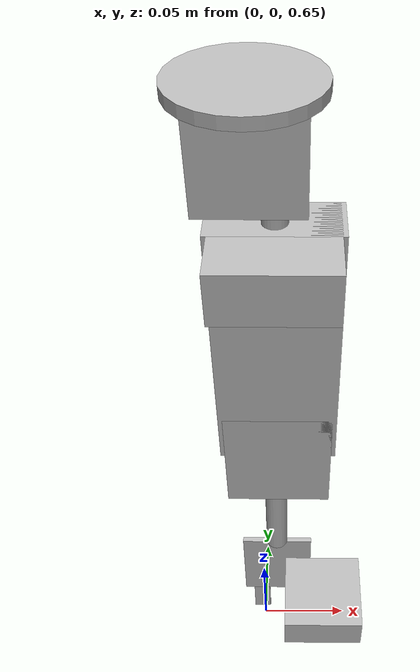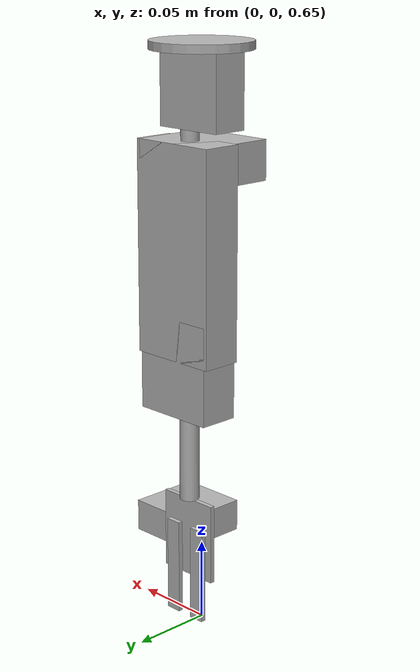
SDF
<sdf version="1.9">
 <world name="aerial_manipulator_world">
  <physics name="1ms" type="ignored">
   <max_step_size>0.001</max_step_size>
   <real_time_factor>1.0</real_time_factor>
  </physics>
  <plugin filename="gz-sim-physics-system" name="gz::sim::systems::Physics"/>
  <plugin filename="gz-sim-user-commands-system" name="gz::sim::systems::UserCommands"/>
  <plugin filename="gz-sim-scene-broadcaster-system" name="gz::sim::systems::SceneBroadcaster"/>
  <plugin filename="gz-sim-sensors-system" name="gz::sim::systems::Sensors">
   <render_engine>ogre2</render_engine>
  </plugin>
  <light type="directional" name="sun">
   <pose>0 0 10 0 0 0</pose>
   <diffuse>0.8 0.8 0.8 1</diffuse>
   <specular>0.2 0.2 0.2 1</specular>
   <attenuation>
    <range>1000</range>
    <constant>0.9</constant>
    <linear>0.01</linear>
    <quadratic>0.001</quadratic>
   </attenuation>
   <direction>-0.5 0.1 -0.9</direction>
  </light>
  <model name="ground_plane">
   <static>true</static>
   <link name="link">
    <collision name="collision"><geometry><plane><normal>0 0 1</normal></plane></geometry></collision>
    <visual name="visual">
     <geometry><plane><normal>0 0 1</normal><size>100 100</size></plane></geometry>
     <material>
      <ambient>0.8 0.8 0.8 1</ambient>
      <diffuse>0.8 0.8 0.8 1</diffuse>
      <specular>0.8 0.8 0.8 1</specular>
     </material>
    </visual>
   </link>
  </model>
  <include>
   <uri>file:///home/lahiru/newlocalrepo/rl-aerial-manipulator/Manipulator/src/manipulator_description/sdf</uri>
   <name>manipulator</name>
   <pose>0 0 1.0 0 0 0</pose>
  </include>
  <joint name="hexa_arm_fixed" type="fixed">
   <parent>hexacopter::base_link</parent>
   <child>manipulator::base_plate</child>
  </joint>
 </world>
</sdf>

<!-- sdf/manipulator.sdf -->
<sdf version='1.11'>
  <model name='manipulator'>
    <link name='base_plate'>
      <inertial>
        <pose>0.00070370370370370367 0 -0.017351851851851851 0 0 0</pose>
        <mass>0.13500000000000001</mass>
        <inertia>
          <ixx>5.8269537037037027e-05</ixx>
          <ixy>0</ixy>
          <ixz>3.149074074074075e-06</ixz>
          <iyy>6.7105185185185195e-05</iyy>
          <iyz>0</iyz>
          <izz>3.9986648148148148e-05</izz>
        </inertia>
      </inertial>
      <collision name='base_plate_collision'>
        <pose>0 0 0 0 0 0</pose>
        <geometry>
          <cylinder>
            <length>0.0050000000000000001</length>
            <radius>0.029999999999999999</radius>
          </cylinder>
        </geometry>
        <surface>
          <contact>
            <ode>
              <kp>1000000</kp>
              <kd>100</kd>
              <min_depth>0.001</min_depth>
            </ode>
          </contact>
          <friction>
            <ode>
              <mu>0.80000000000000004</mu>
              <mu2>0.80000000000000004</mu2>
            </ode>
          </friction>
        </surface>
      </collision>
      <collision name='base_plate_fixed_joint_lump__motor_1_collision_1'>
        <pose>0 0 -0.024500000000000001 0 0 0</pose>
        <geometry>
          <box>
            <size>0.044999999999999998 0.021999999999999999 0.043999999999999997</size>
          </box>
        </geometry>
        <surface>
          <contact>
            <ode>
              <kp>1000000</kp>
              <kd>100</kd>
            </ode>
          </contact>
          <friction>
            <ode>
              <mu>0.80000000000000004</mu>
              <mu2>0.80000000000000004</mu2>
            </ode>
          </friction>
        </surface>
      </collision>
      <collision name='base_plate_fixed_joint_lump__razor_connector_collision_2'>
        <pose>0.0094999999999999998 0 -0.050500000000000003 0 0 0</pose>
        <geometry>
          <cylinder>
            <length>0.0080000000000000002</length>
            <radius>0.0054999999999999997</radius>
          </cylinder>
        </geometry>
        <surface>
          <contact>
            <ode>
              <kp>1000000</kp>
              <kd>100</kd>
            </ode>
          </contact>
          <friction>
            <ode>
              <mu>0.80000000000000004</mu>
              <mu2>0.80000000000000004</mu2>
            </ode>
          </friction>
        </surface>
      </collision>
      <visual name='base_plate_visual'>
        <pose>0 0 0 0 0 0</pose>
        <geometry>
          <cylinder>
            <length>0.0050000000000000001</length>
            <radius>0.029999999999999999</radius>
          </cylinder>
        </geometry>
      </visual>
      <visual name='base_plate_fixed_joint_lump__motor_1_visual_1'>
        <pose>0 0 -0.024500000000000001 0 0 0</pose>
        <geometry>
          <box>
            <size>0.044999999999999998 0.021999999999999999 0.043999999999999997</size>
          </box>
        </geometry>
      </visual>
      <visual name='base_plate_fixed_joint_lump__razor_connector_visual_2'>
        <pose>0.0094999999999999998 0 -0.050500000000000003 0 0 0</pose>
        <geometry>
          <cylinder>
            <length>0.0080000000000000002</length>
            <radius>0.0054999999999999997</radius>
          </cylinder>
        </geometry>
      </visual>
    </link>
    <joint name='joint_1' type='revolute'>
      <pose relative_to='base_plate'>0.0094999999999999998 -0.01 -0.066500000000000004 0 0 0</pose>
      <parent>base_plate</parent>
      <child>motor_2</child>
      <axis>
        <xyz>0 0 1</xyz>
        <limit>
          <lower>-3.1400000000000001</lower>
          <upper>3.1400000000000001</upper>
          <effort>2</effort>
          <velocity>5</velocity>
        </limit>
        <dynamics>
          <damping>0.10000000000000001</damping>
          <friction>0.10000000000000001</friction>
          <spring_reference>0</spring_reference>
          <spring_stiffness>0</spring_stiffness>
        </dynamics>
      </axis>
      <physics>
        <ode>
          <limit>
            <cfm>0</cfm>
            <erp>0.20000000000000001</erp>
          </limit>
        </ode>
      </physics>
      <initial_position>0.0</initial_position>
    </joint>
    <link name='motor_2'>
      <pose relative_to='joint_1'>0 0 0 0 0 0</pose>
      <inertial>
        <pose>0 0 0 0 0 0</pose>
        <mass>0.082000000000000003</mass>
        <inertia>
          <ixx>2.09e-05</ixx>
          <ixy>0</ixy>
          <ixz>0</ixz>
          <iyy>3.3399999999999999e-05</iyy>
          <iyz>0</iyz>
          <izz>2.1999999999999999e-05</izz>
        </inertia>
      </inertial>
      <collision name='motor_2_collision'>
        <pose>0 0 0 0 0 0</pose>
        <geometry>
          <box>
            <size>0.052999999999999999 0.050000000000000003 0.024</size>
          </box>
        </geometry>
        <surface>
          <contact>
            <ode>
              <kp>1000000</kp>
              <kd>100</kd>
            </ode>
          </contact>
          <friction>
            <ode>
              <mu>0.80000000000000004</mu>
              <mu2>0.80000000000000004</mu2>
            </ode>
          </friction>
        </surface>
      </collision>
      <visual name='motor_2_visual'>
        <pose>0 0 0 0 0 0</pose>
        <geometry>
          <box>
            <size>0.052999999999999999 0.050000000000000003 0.024</size>
          </box>
        </geometry>
      </visual>
    </link>
    <joint name='joint_2' type='revolute'>
      <pose relative_to='motor_2'>0 0.012500000000000001 0 0 0 0</pose>
      <parent>motor_2</parent>
      <child>h_arm</child>
      <axis>
        <xyz>1 0 0</xyz>
        <limit>
          <lower>-1.5700000000000001</lower>
          <upper>1.5700000000000001</upper>
          <effort>2</effort>
          <velocity>3</velocity>
        </limit>
        <dynamics>
          <damping>0.10000000000000001</damping>
          <friction>0.10000000000000001</friction>
          <spring_reference>0</spring_reference>
          <spring_stiffness>0</spring_stiffness>
        </dynamics>
      </axis>
      <physics>
        <ode>
          <limit>
            <cfm>0</cfm>
            <erp>0.20000000000000001</erp>
          </limit>
        </ode>
      </physics>
      <initial_position>0.0</initial_position>
    </joint>
    <link name='h_arm'>
      <pose relative_to='joint_2'>0 0 0 0 0 0</pose>
      <inertial>
        <pose>0 0 -0.051999999999999998 0 0 0</pose>
        <mass>0.053999999999999999</mass>
        <inertia>
          <ixx>2.5400000000000001e-05</ixx>
          <ixy>0</ixy>
          <ixz>0</ixz>
          <iyy>2.4600000000000002e-05</iyy>
          <iyz>0</iyz>
          <izz>9.4350000000000005e-07</izz>
        </inertia>
      </inertial>
      <collision name='h_arm_collision'>
        <pose>0 0 -0.051999999999999998 0 0 0</pose>
        <geometry>
          <box>
            <size>0.057000000000000002 0.025000000000000001 0.128</size>
          </box>
        </geometry>
        <surface>
          <contact>
            <ode>
              <kp>1000000</kp>
              <kd>100</kd>
            </ode>
          </contact>
          <friction>
            <ode>
              <mu>0.80000000000000004</mu>
              <mu2>0.80000000000000004</mu2>
            </ode>
          </friction>
        </surface>
      </collision>
      <visual name='h_arm_visual'>
        <pose>0 0 -0.051999999999999998 0 0 0</pose>
        <geometry>
          <box>
            <size>0.057000000000000002 0.025000000000000001 0.128</size>
          </box>
        </geometry>
      </visual>
    </link>
    <joint name='joint_3' type='revolute'>
      <pose relative_to='h_arm'>0 0 -0.106 0 0 0</pose>
      <parent>h_arm</parent>
      <child>motor_3</child>
      <axis>
        <xyz>1 0 0</xyz>
        <limit>
          <lower>-1.5700000000000001</lower>
          <upper>1.5700000000000001</upper>
          <effort>2</effort>
          <velocity>3</velocity>
        </limit>
        <dynamics>
          <damping>0.10000000000000001</damping>
          <friction>0.10000000000000001</friction>
          <spring_reference>0</spring_reference>
          <spring_stiffness>0</spring_stiffness>
        </dynamics>
      </axis>
      <physics>
        <ode>
          <limit>
            <cfm>0</cfm>
            <erp>0.20000000000000001</erp>
          </limit>
        </ode>
      </physics>
      <initial_position>0.0</initial_position>
    </joint>
    <link name='motor_3'>
      <pose relative_to='joint_3'>0 0 0 0 0 0</pose>
      <inertial>
        <pose>0.007458333333333335 -0.0073333333333333332 -0.067833333333333329 0 0 0</pose>
        <mass>0.17999999999999999</mass>
        <inertia>
          <ixx>0.00057086999999999991</ixx>
          <ixy>2.3815000000000002e-05</ixy>
          <ixz>8.1126249999999999e-05</ixz>
          <iyy>0.00059468093750000004</iyy>
          <iyz>-7.8099999999999987e-05</iyz>
          <izz>8.1300937499999978e-05</izz>
        </inertia>
      </inertial>
      <collision name='motor_3_collision'>
        <pose>0 0 -0.014999999999999999 0 0 0</pose>
        <geometry>
          <box>
            <size>0.052999999999999999 0.025000000000000001 0.059999999999999998</size>
          </box>
        </geometry>
        <surface>
          <contact>
            <ode>
              <kp>1000000</kp>
              <kd>100</kd>
            </ode>
          </contact>
          <friction>
            <ode>
              <mu>0.80000000000000004</mu>
              <mu2>0.80000000000000004</mu2>
            </ode>
          </friction>
        </surface>
      </collision>
      <collision name='motor_3_fixed_joint_lump__rod_collision_1'>
        <pose>-0.0015 0 -0.072499999999999995 0 0 0</pose>
        <geometry>
          <cylinder>
            <length>0.055</length>
            <radius>0.0060000000000000001</radius>
          </cylinder>
        </geometry>
        <surface>
          <contact>
            <ode>
              <kp>1000000</kp>
              <kd>100</kd>
            </ode>
          </contact>
          <friction>
            <ode>
              <mu>0.80000000000000004</mu>
              <mu2>0.80000000000000004</mu2>
            </ode>
          </friction>
        </surface>
      </collision>
      <collision name='motor_3_fixed_joint_lump__gripper_base_collision_2'>
        <pose>-0.0015 0 -0.125 0 0 0</pose>
        <geometry>
          <box>
            <size>0.040000000000000001 0.0030000000000000001 0.050000000000000003</size>
          </box>
        </geometry>
        <surface>
          <contact>
            <ode>
              <kp>1000000</kp>
              <kd>100</kd>
            </ode>
          </contact>
          <friction>
            <ode>
              <mu>0.80000000000000004</mu>
              <mu2>0.80000000000000004</mu2>
            </ode>
          </friction>
        </surface>
      </collision>
      <collision name='motor_3_fixed_joint_lump__motor_4_collision_3'>
        <pose>0.025499999999999998 -0.024 -0.127 0 0 0</pose>
        <geometry>
          <box>
            <size>0.043999999999999997 0.044999999999999998 0.02</size>
          </box>
        </geometry>
        <surface>
          <contact>
            <ode>
              <kp>1000000</kp>
              <kd>100</kd>
            </ode>
          </contact>
          <friction>
            <ode>
              <mu>0.80000000000000004</mu>
              <mu2>0.80000000000000004</mu2>
            </ode>
          </friction>
        </surface>
      </collision>
      <visual name='motor_3_visual'>
        <pose>0 0 -0.014999999999999999 0 0 0</pose>
        <geometry>
          <box>
            <size>0.052999999999999999 0.025000000000000001 0.059999999999999998</size>
          </box>
        </geometry>
      </visual>
      <visual name='motor_3_fixed_joint_lump__rod_visual_1'>
        <pose>-0.0015 0 -0.072499999999999995 0 0 0</pose>
        <geometry>
          <cylinder>
            <length>0.055</length>
            <radius>0.0060000000000000001</radius>
          </cylinder>
        </geometry>
      </visual>
      <visual name='motor_3_fixed_joint_lump__gripper_base_visual_2'>
        <pose>-0.0015 0 -0.125 0 0 0</pose>
        <geometry>
          <box>
            <size>0.040000000000000001 0.0030000000000000001 0.050000000000000003</size>
          </box>
        </geometry>
      </visual>
      <visual name='motor_3_fixed_joint_lump__motor_4_visual_3'>
        <pose>0.025499999999999998 -0.024 -0.127 0 0 0</pose>
        <geometry>
          <box>
            <size>0.043999999999999997 0.044999999999999998 0.02</size>
          </box>
        </geometry>
      </visual>
    </link>
    <joint name='joint_4' type='revolute'>
      <pose relative_to='motor_3'>-0.0115 0.0030000000000000001 -0.125 0 0 0</pose>
      <parent>motor_3</parent>
      <child>gripper_L</child>
      <axis>
        <xyz>0 1 0</xyz>
        <limit>
          <lower>-0.001</lower>
          <upper>1.2</upper>
          <effort>1</effort>
          <velocity>2</velocity>
        </limit>
        <dynamics>
          <damping>0.050000000000000003</damping>
          <friction>0.050000000000000003</friction>
          <spring_reference>0</spring_reference>
          <spring_stiffness>0</spring_stiffness>
        </dynamics>
      </axis>
      <physics>
        <ode>
          <limit>
            <cfm>0</cfm>
            <erp>0.20000000000000001</erp>
          </limit>
        </ode>
      </physics>
      <initial_position>0.01</initial_position>
    </joint>
    <link name='gripper_L'>
      <pose relative_to='joint_4'>0 0 0 0 0 0</pose>
      <inertial>
        <pose>0 0 -0.021999999999999999 0 0 0</pose>
        <mass>0.02</mass>
        <inertia>
          <ixx>6.0299999999999999e-06</ixx>
          <ixy>0</ixy>
          <ixz>0</ixz>
          <iyy>6.1e-06</iyy>
          <iyz>0</iyz>
          <izz>9.9999999999999995e-08</izz>
        </inertia>
      </inertial>
      <collision name='gripper_L_collision'>
        <pose>0 0 -0.021999999999999999 0 0 0</pose>
        <geometry>
          <box>
            <size>0.01 0.0030000000000000001 0.059999999999999998</size>
          </box>
        </geometry>
        <surface>
          <contact>
            <ode>
              <kp>1000000</kp>
              <kd>100</kd>
            </ode>
          </contact>
          <friction>
            <ode>
              <mu>1</mu>
              <mu2>1</mu2>
            </ode>
          </friction>
        </surface>
      </collision>
      <visual name='gripper_L_visual'>
        <pose>0 0 -0.021999999999999999 0 0 0</pose>
        <geometry>
          <box>
            <size>0.01 0.0030000000000000001 0.059999999999999998</size>
          </box>
        </geometry>
      </visual>
    </link>
    <joint name='joint_5' type='revolute'>
      <pose relative_to='motor_3'>0.0085000000000000006 0.0030000000000000001 -0.125 0 0 0</pose>
      <parent>motor_3</parent>
      <child>gripper_R</child>
      <axis>
        <xyz>0 1 0</xyz>
        <mimic joint='joint_4'>
          <multiplier>-1</multiplier>
          <offset>0</offset>
          <reference>0</reference>
        </mimic>
        <limit>
          <lower>-1.2</lower>
          <upper>0.001</upper>
          <effort>1</effort>
          <velocity>2</velocity>
        </limit>
        <dynamics>
          <damping>0.050000000000000003</damping>
          <friction>0.050000000000000003</friction>
          <spring_reference>0</spring_reference>
          <spring_stiffness>0</spring_stiffness>
        </dynamics>
      </axis>
      <physics>
        <ode>
          <limit>
            <cfm>0</cfm>
            <erp>0.20000000000000001</erp>
          </limit>
        </ode>
      </physics>
      <initial_position>-0.01</initial_position>
    </joint>
    <link name='gripper_R'>
      <pose relative_to='joint_5'>0 0 0 0 0 0</pose>
      <inertial>
        <pose>0 0 -0.021999999999999999 0 0 0</pose>
        <mass>0.02</mass>
        <inertia>
          <ixx>6.0299999999999999e-06</ixx>
          <ixy>0</ixy>
          <ixz>0</ixz>
          <iyy>6.1e-06</iyy>
          <iyz>0</iyz>
          <izz>9.9999999999999995e-08</izz>
        </inertia>
      </inertial>
      <collision name='gripper_R_collision'>
        <pose>0 0 -0.021999999999999999 0 0 0</pose>
        <geometry>
          <box>
            <size>0.01 0.0030000000000000001 0.059999999999999998</size>
          </box>
        </geometry>
        <surface>
          <contact>
            <ode>
              <kp>1000000</kp>
              <kd>100</kd>
            </ode>
          </contact>
          <friction>
            <ode>
              <mu>1</mu>
              <mu2>1</mu2>
            </ode>
          </friction>
        </surface>
      </collision>
      <visual name='gripper_R_visual'>
        <pose>0 0 -0.021999999999999999 0 0 0</pose>
        <geometry>
          <box>
            <size>0.01 0.0030000000000000001 0.059999999999999998</size>
          </box>
        </geometry>
      </visual>
    </link>
    <plugin name='gz_ros2_control::GazeboSimROS2ControlPlugin' filename='gz_ros2_control-system'>
      <parameters>/home/lahiru/newlocalrepo/rl-aerial-manipulator/Manipulator/install/manipulator_controller/share/manipulator_controller/config/manipulator_controllers.yaml</parameters>
      <controller_manager_name>controller_manager</controller_manager_name>
    </plugin>
    <frame name='joint_motor1_to_connector' attached_to='motor_1'>
      <pose>0.0094999999999999998 0 -0.025999999999999999 0 0 0</pose>
    </frame>
    <frame name='razor_connector' attached_to='joint_motor1_to_connector'>
      <pose>0 0 0 0 0 0</pose>
    </frame>
    <frame name='joint_gripperbase_to_motor4' attached_to='gripper_base'>
      <pose>0.027 -0.024 -0.002 0 0 0</pose>
    </frame>
    <frame name='motor_4' attached_to='joint_gripperbase_to_motor4'>
      <pose>0 0 0 0 0 0</pose>
    </frame>
    <frame name='joint_rod_to_gripper_base' attached_to='rod'>
      <pose>0 0 -0.052499999999999998 0 0 0</pose>
    </frame>
    <frame name='gripper_base' attached_to='joint_rod_to_gripper_base'>
      <pose>0 0 0 0 0 0</pose>
    </frame>
    <frame name='joint_motor3_to_rod' attached_to='motor_3'>
      <pose>-0.0015 0 -0.072499999999999995 0 0 0</pose>
    </frame>
    <frame name='rod' attached_to='joint_motor3_to_rod'>
      <pose>0 0 0 0 0 0</pose>
    </frame>
    <frame name='joint_motor_1' attached_to='base_plate'>
      <pose>0 0 -0.024500000000000001 0 0 0</pose>
    </frame>
    <frame name='motor_1' attached_to='joint_motor_1'>
      <pose>0 0 0 0 0 0</pose>
    </frame>
  </model>
</sdf>
